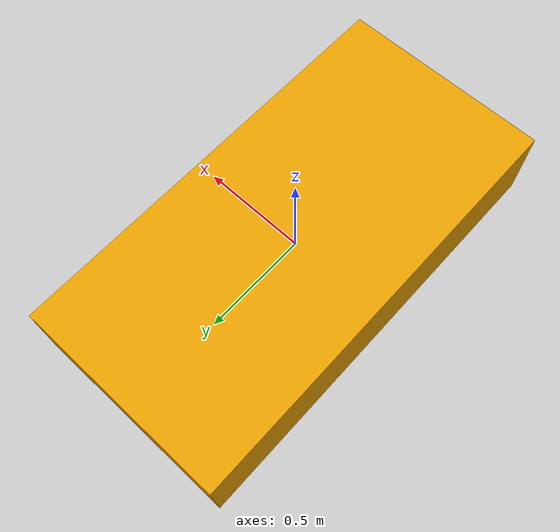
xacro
<?xml version="1.0"?>
<robot name="rbo" xmlns:xacro="http://www.ros.org/wiki/xacro">

  <!-- variable -->
  <xacro:property name="PI" value="3.1415926"/>
  <xacro:property name="car_width" value="1.0"/>
  <xacro:property name="car_length" value="2.0"/>
  <xacro:property name="car_height" value="0.4"/>

  <!-- macro -->
  <xacro:macro name="default_inertial" params="mass">
    <inertial>
      <mass value="${mass}" />
      <inertia ixx="1.0" ixy="0.0" ixz="0.0" iyy="1.0" iyz="0.0" izz="1.0" />
    </inertial>
  </xacro:macro>

  <xacro:macro name="box_geometry" params="width length height">
    <geometry>
      <box size="${width} ${length} ${height}"/>
    </geometry>
  </xacro:macro>

  <!-- links -->
  <link name="car_link">
    <visual>
      <xacro:box_geometry width="${car_width}" length="${car_length}" height="${car_height}"/>
    </visual>
    <collision>
      <xacro:box_geometry width="${car_width}" length="${car_length}" height="${car_height}"/>
    </collision>
    <xacro:default_inertial mass="5.0"/>
  </link>

</robot>
